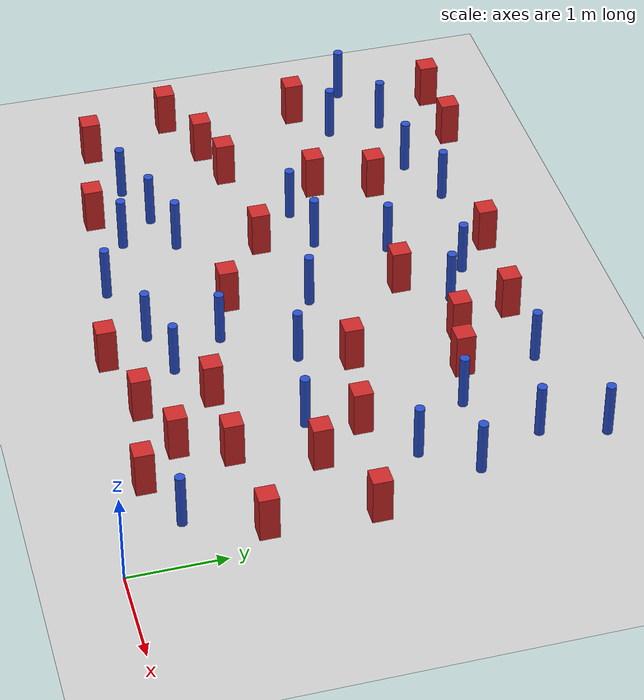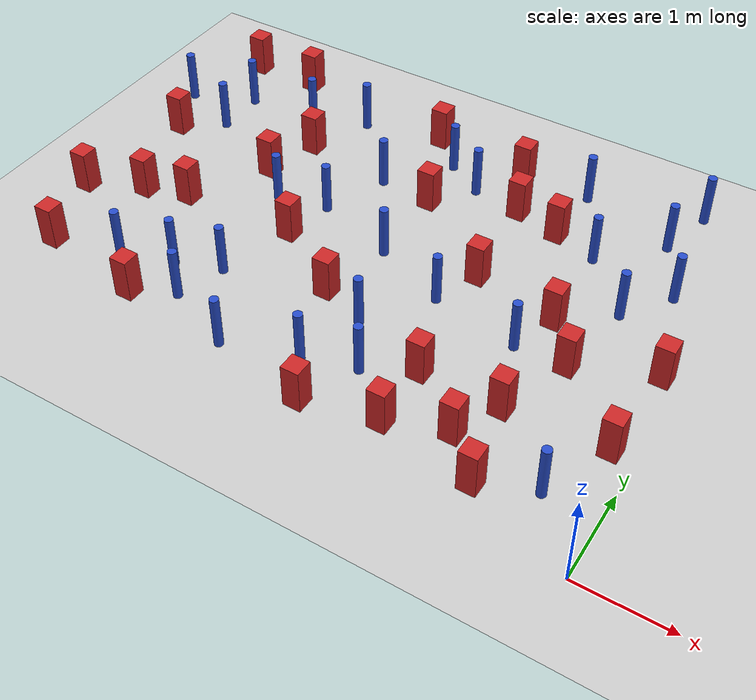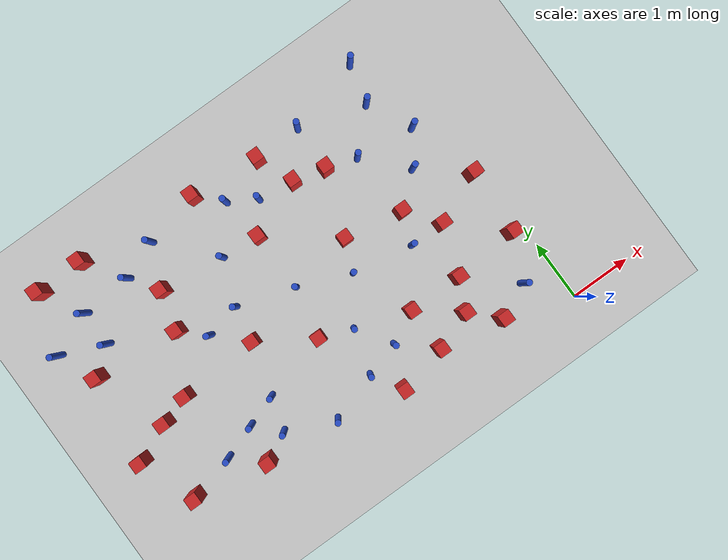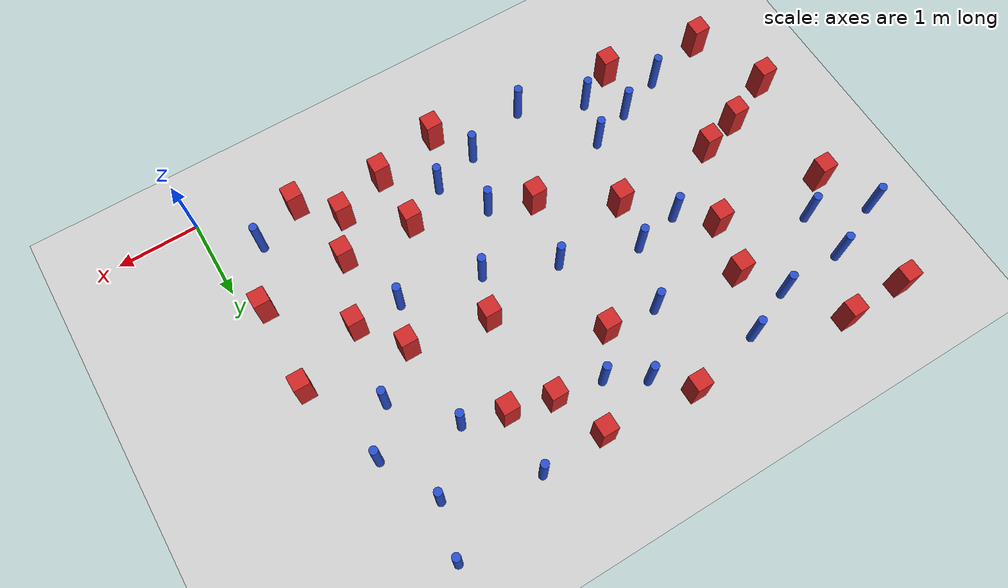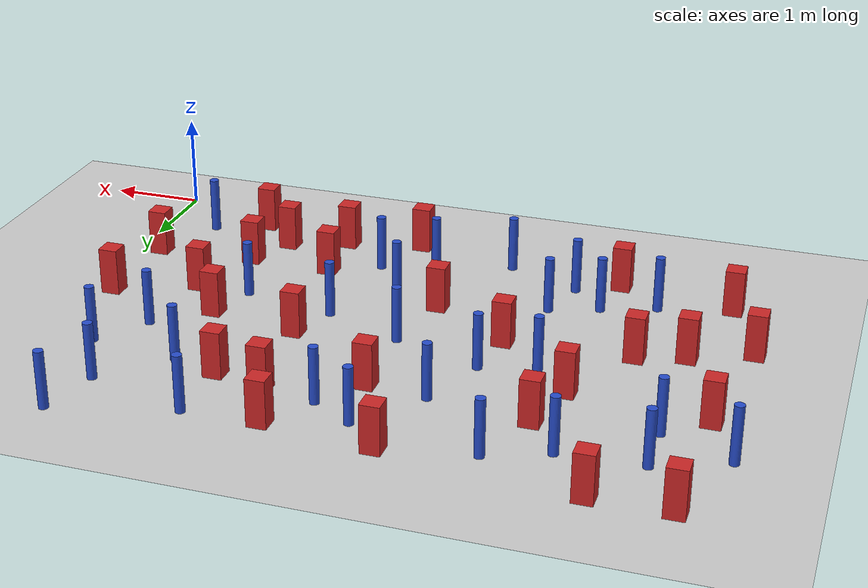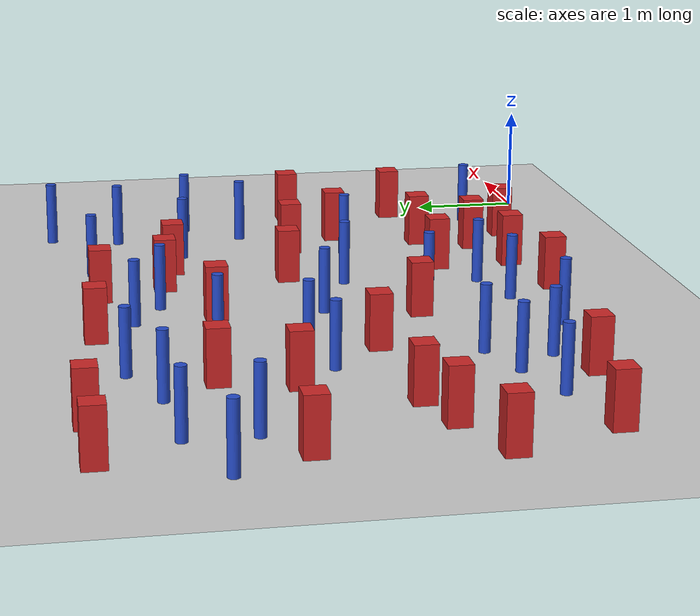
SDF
<sdf version="1.6">
 <world name="default">
  <model name="ground_plane">
   <static>1</static>
   <link name="link">
    <collision name="collision">
     <geometry><plane><normal>0 0 1</normal><size>100 100</size></plane></geometry>
     <surface><friction><ode><mu>100</mu><mu2>50</mu2></ode></friction></surface>
    </collision>
    <visual name="visual">
     <cast_shadows>0</cast_shadows>
     <geometry><plane><normal>0 0 1</normal><size>100 100</size></plane></geometry>
     <material>
      <ambient>1.0 1.0 1.0 1.0</ambient>
      <diffuse>0.8 0.8 0.8 1.0</diffuse>
      <specular>0.01 0.01 0.01 1.000000</specular>
     </material>
    </visual>
   </link>
  </model>
  <model name="square_post_obstacle11">
   <static>true</static>
   <pose>-5.11208348679 3.83488327447 -6.11067671241e-07 -5.50515727128e-06 -8.79689657224e-07 2.37013304536e-05</pose>
   <link name="link">
    <pose>0 0 0.25 0 -0 0</pose>
    <inertial>
     <mass>100</mass>
     <inertia>
      <ixx>0.166667</ixx>
      <ixy>0</ixy>
      <ixz>0</ixz>
      <iyy>0.166667</iyy>
      <iyz>0</iyz>
      <izz>0.166667</izz>
     </inertia>
    </inertial>
    <collision name="collision"><geometry><box><size>.2 .2 .5</size></box></geometry></collision>
    <visual name="visual">
     <geometry><box><size>.2 .2 .5</size></box></geometry>
     <material>
      <script><name>Gazebo/Red</name><uri>file://media/materials/scripts/gazebo.material</uri></script>
     </material>
    </visual>
   </link>
  </model>
  <model name="pole_obstacle16">
   <static>true</static>
   <pose>-3.53106733543 4.36434588367 -9.4761961606e-06 5.49618799729e-07 2.36310414006e-07 -1.55090534822e-07</pose>
   <link name="link">
    <pose>0 0 0.3 0 -0 0</pose>
    <inertial>
     <mass>1</mass>
     <inertia><ixx>0.145833</ixx><ixy>0</ixy><ixz>0</ixz><iyy>0.145833</iyy><iyz>0</iyz><izz>0.125</izz></inertia>
    </inertial>
    <collision name="collision">
     <geometry><cylinder><radius>0.05</radius><length>.6</length></cylinder></geometry>
    </collision>
    <visual name="visual">
     <geometry><cylinder><radius>0.05</radius><length>.6</length></cylinder></geometry>
     <material>
      <script><name>Gazebo/Blue</name><uri>file://media/materials/scripts/gazebo.material</uri></script>
     </material>
    </visual>
   </link>
  </model>
  <model name="square_post_obstacle13">
   <static>true</static>
   <pose>-1.98647705047 3.88158295997 -6.11067671241e-07 -5.50515727128e-06 -8.79689657224e-07 2.37013304536e-05</pose>
   <link name="link">
    <pose>0 0 0.25 0 -0 0</pose>
    <inertial>
     <mass>100</mass>
     <inertia>
      <ixx>0.166667</ixx>
      <ixy>0</ixy>
      <ixz>0</ixz>
      <iyy>0.166667</iyy>
      <iyz>0</iyz>
      <izz>0.166667</izz>
     </inertia>
    </inertial>
    <collision name="collision"><geometry><box><size>.2 .2 .5</size></box></geometry></collision>
    <visual name="visual">
     <geometry><box><size>.2 .2 .5</size></box></geometry>
     <material>
      <script><name>Gazebo/Red</name><uri>file://media/materials/scripts/gazebo.material</uri></script>
     </material>
    </visual>
   </link>
  </model>
  <model name="pole_obstacle23">
   <static>true</static>
   <pose>-0.52916791174 3.61355758785 -9.47619616065e-06 5.49618799737e-07 2.36310414065e-07 -1.55090534797e-07</pose>
   <link name="link">
    <pose>0 0 0.3 0 -0 0</pose>
    <inertial>
     <mass>1</mass>
     <inertia><ixx>0.145833</ixx><ixy>0</ixy><ixz>0</ixz><iyy>0.145833</iyy><iyz>0</iyz><izz>0.125</izz></inertia>
    </inertial>
    <collision name="collision">
     <geometry><cylinder><radius>0.05</radius><length>.6</length></cylinder></geometry>
    </collision>
    <visual name="visual">
     <geometry><cylinder><radius>0.05</radius><length>.6</length></cylinder></geometry>
     <material>
      <script><name>Gazebo/Blue</name><uri>file://media/materials/scripts/gazebo.material</uri></script>
     </material>
    </visual>
   </link>
  </model>
  <model name="pole_obstacle25">
   <static>true</static>
   <pose>-5.43658093436 4.29527930174 -9.47619616065e-06 5.49618799737e-07 2.36310414037e-07 -1.55090534814e-07</pose>
   <link name="link">
    <pose>0 0 0.3 0 -0 0</pose>
    <inertial>
     <mass>1</mass>
     <inertia><ixx>0.145833</ixx><ixy>0</ixy><ixz>0</ixz><iyy>0.145833</iyy><iyz>0</iyz><izz>0.125</izz></inertia>
    </inertial>
    <collision name="collision">
     <geometry><cylinder><radius>0.05</radius><length>.6</length></cylinder></geometry>
    </collision>
    <visual name="visual">
     <geometry><cylinder><radius>0.05</radius><length>.6</length></cylinder></geometry>
     <material>
      <script><name>Gazebo/Blue</name><uri>file://media/materials/scripts/gazebo.material</uri></script>
     </material>
    </visual>
   </link>
  </model>
  <model name="pole_obstacle29">
   <static>true</static>
   <pose>-2.71847354657 1.07524058883 -9.47619616065e-06 5.49618799737e-07 2.36310414072e-07 -1.55090534793e-07</pose>
   <link name="link">
    <pose>0 0 0.3 0 -0 0</pose>
    <inertial>
     <mass>1</mass>
     <inertia><ixx>0.145833</ixx><ixy>0</ixy><ixz>0</ixz><iyy>0.145833</iyy><iyz>0</iyz><izz>0.125</izz></inertia>
    </inertial>
    <collision name="collision">
     <geometry><cylinder><radius>0.05</radius><length>.6</length></cylinder></geometry>
    </collision>
    <visual name="visual">
     <geometry><cylinder><radius>0.05</radius><length>.6</length></cylinder></geometry>
     <material>
      <script><name>Gazebo/Blue</name><uri>file://media/materials/scripts/gazebo.material</uri></script>
     </material>
    </visual>
   </link>
  </model>
  <model name="square_post_obstacle22">
   <static>true</static>
   <pose>-6.25952303792 2.1627253685 -6.11067671241e-07 -5.50515727128e-06 -8.79689657224e-07 2.37013304536e-05</pose>
   <link name="link">
    <pose>0 0 0.25 0 -0 0</pose>
    <inertial>
     <mass>100</mass>
     <inertia>
      <ixx>0.166667</ixx>
      <ixy>0</ixy>
      <ixz>0</ixz>
      <iyy>0.166667</iyy>
      <iyz>0</iyz>
      <izz>0.166667</izz>
     </inertia>
    </inertial>
    <collision name="collision"><geometry><box><size>.2 .2 .5</size></box></geometry></collision>
    <visual name="visual">
     <geometry><box><size>.2 .2 .5</size></box></geometry>
     <material>
      <script><name>Gazebo/Red</name><uri>file://media/materials/scripts/gazebo.material</uri></script>
     </material>
    </visual>
   </link>
  </model>
  <model name="square_post_obstacle23">
   <static>true</static>
   <pose>-1.03589581127 2.14946720359 -6.11067671241e-07 -5.50515727128e-06 -8.79689657224e-07 2.37013304536e-05</pose>
   <link name="link">
    <pose>0 0 0.25 0 -0 0</pose>
    <inertial>
     <mass>100</mass>
     <inertia>
      <ixx>0.166667</ixx>
      <ixy>0</ixy>
      <ixz>0</ixz>
      <iyy>0.166667</iyy>
      <iyz>0</iyz>
      <izz>0.166667</izz>
     </inertia>
    </inertial>
    <collision name="collision"><geometry><box><size>.2 .2 .5</size></box></geometry></collision>
    <visual name="visual">
     <geometry><box><size>.2 .2 .5</size></box></geometry>
     <material>
      <script><name>Gazebo/Red</name><uri>file://media/materials/scripts/gazebo.material</uri></script>
     </material>
    </visual>
   </link>
  </model>
  <model name="square_post_obstacle24">
   <static>true</static>
   <pose>-1.31617062168 1.34023704746 -6.11067671241e-07 -5.50515727128e-06 -8.79689657224e-07 2.37013304536e-05</pose>
   <link name="link">
    <pose>0 0 0.25 0 -0 0</pose>
    <inertial>
     <mass>100</mass>
     <inertia>
      <ixx>0.166667</ixx>
      <ixy>0</ixy>
      <ixz>0</ixz>
      <iyy>0.166667</iyy>
      <iyz>0</iyz>
      <izz>0.166667</izz>
     </inertia>
    </inertial>
    <collision name="collision"><geometry><box><size>.2 .2 .5</size></box></geometry></collision>
    <visual name="visual">
     <geometry><box><size>.2 .2 .5</size></box></geometry>
     <material>
      <script><name>Gazebo/Red</name><uri>file://media/materials/scripts/gazebo.material</uri></script>
     </material>
    </visual>
   </link>
  </model>
  <model name="pole_obstacle42">
   <static>true</static>
   <pose>-4.08687508613 0.654166214375 -9.47619616065e-06 5.49618799737e-07 2.36310414061e-07 -1.550905348e-07</pose>
   <link name="link">
    <pose>0 0 0.3 0 -0 0</pose>
    <inertial>
     <mass>1</mass>
     <inertia><ixx>0.145833</ixx><ixy>0</ixy><ixz>0</ixz><iyy>0.145833</iyy><iyz>0</iyz><izz>0.125</izz></inertia>
    </inertial>
    <collision name="collision">
     <geometry><cylinder><radius>0.05</radius><length>.6</length></cylinder></geometry>
    </collision>
    <visual name="visual">
     <geometry><cylinder><radius>0.05</radius><length>.6</length></cylinder></geometry>
     <material>
      <script><name>Gazebo/Blue</name><uri>file://media/materials/scripts/gazebo.material</uri></script>
     </material>
    </visual>
   </link>
  </model>
  <model name="square_post_obstacle35">
   <static>true</static>
   <pose>-2.99519555615 0.434868840556 -6.11067671241e-07 -5.50515727128e-06 -8.79689657224e-07 2.37013304536e-05</pose>
   <link name="link">
    <pose>0 0 0.25 0 -0 0</pose>
    <inertial>
     <mass>100</mass>
     <inertia>
      <ixx>0.166667</ixx>
      <ixy>0</ixy>
      <ixz>0</ixz>
      <iyy>0.166667</iyy>
      <iyz>0</iyz>
      <izz>0.166667</izz>
     </inertia>
    </inertial>
    <collision name="collision"><geometry><box><size>.2 .2 .5</size></box></geometry></collision>
    <visual name="visual">
     <geometry><box><size>.2 .2 .5</size></box></geometry>
     <material>
      <script><name>Gazebo/Red</name><uri>file://media/materials/scripts/gazebo.material</uri></script>
     </material>
    </visual>
   </link>
  </model>
  <model name="square_post_obstacle36">
   <static>true</static>
   <pose>-2.3838666586 2.83522698682 -6.11067671241e-07 -5.50515727128e-06 -8.79689657224e-07 2.37013304536e-05</pose>
   <link name="link">
    <pose>0 0 0.25 0 -0 0</pose>
    <inertial>
     <mass>100</mass>
     <inertia>
      <ixx>0.166667</ixx>
      <ixy>0</ixy>
      <ixz>0</ixz>
      <iyy>0.166667</iyy>
      <iyz>0</iyz>
      <izz>0.166667</izz>
     </inertia>
    </inertial>
    <collision name="collision"><geometry><box><size>.2 .2 .5</size></box></geometry></collision>
    <visual name="visual">
     <geometry><box><size>.2 .2 .5</size></box></geometry>
     <material>
      <script><name>Gazebo/Red</name><uri>file://media/materials/scripts/gazebo.material</uri></script>
     </material>
    </visual>
   </link>
  </model>
  <model name="pole_obstacle49">
   <static>true</static>
   <pose>-4.35210475072 2.96771389852 -9.47619616065e-06 5.49618799738e-07 2.36310414051e-07 -1.55090534805e-07</pose>
   <link name="link">
    <pose>0 0 0.3 0 -0 0</pose>
    <inertial>
     <mass>1</mass>
     <inertia><ixx>0.145833</ixx><ixy>0</ixy><ixz>0</ixz><iyy>0.145833</iyy><iyz>0</iyz><izz>0.125</izz></inertia>
    </inertial>
    <collision name="collision">
     <geometry><cylinder><radius>0.05</radius><length>.6</length></cylinder></geometry>
    </collision>
    <visual name="visual">
     <geometry><cylinder><radius>0.05</radius><length>.6</length></cylinder></geometry>
     <material>
      <script><name>Gazebo/Blue</name><uri>file://media/materials/scripts/gazebo.material</uri></script>
     </material>
    </visual>
   </link>
  </model>
  <model name="square_post_obstacle51">
   <static>true</static>
   <pose>-3.59991834089 1.83453150276 -6.11067671241e-07 -5.50515727128e-06 -8.79689657224e-07 2.37013304536e-05</pose>
   <link name="link">
    <pose>0 0 0.25 0 -0 0</pose>
    <inertial>
     <mass>100</mass>
     <inertia>
      <ixx>0.166667</ixx>
      <ixy>0</ixy>
      <ixz>0</ixz>
      <iyy>0.166667</iyy>
      <iyz>0</iyz>
      <izz>0.166667</izz>
     </inertia>
    </inertial>
    <collision name="collision"><geometry><box><size>.2 .2 .5</size></box></geometry></collision>
    <visual name="visual">
     <geometry><box><size>.2 .2 .5</size></box></geometry>
     <material>
      <script><name>Gazebo/Red</name><uri>file://media/materials/scripts/gazebo.material</uri></script>
     </material>
    </visual>
   </link>
  </model>
  <model name="pole_obstacle72">
   <static>true</static>
   <pose>-5.21462465853 1.35950944324 -9.47619616065e-06 5.49618799738e-07 2.36310414071e-07 -1.55090534796e-07</pose>
   <link name="link">
    <pose>0 0 0.3 0 -0 0</pose>
    <inertial>
     <mass>1</mass>
     <inertia><ixx>0.145833</ixx><ixy>0</ixy><ixz>0</ixz><iyy>0.145833</iyy><iyz>0</iyz><izz>0.125</izz></inertia>
    </inertial>
    <collision name="collision">
     <geometry><cylinder><radius>0.05</radius><length>.6</length></cylinder></geometry>
    </collision>
    <visual name="visual">
     <geometry><cylinder><radius>0.05</radius><length>.6</length></cylinder></geometry>
     <material>
      <script><name>Gazebo/Blue</name><uri>file://media/materials/scripts/gazebo.material</uri></script>
     </material>
    </visual>
   </link>
  </model>
  <model name="square_post_obstacle63">
   <static>true</static>
   <pose>-6.68951539623 3.32651231091 -6.11067671241e-07 -5.50515727128e-06 -8.79689657224e-07 2.37013304536e-05</pose>
   <link name="link">
    <pose>0 0 0.25 0 -0 0</pose>
    <inertial>
     <mass>100</mass>
     <inertia>
      <ixx>0.166667</ixx>
      <ixy>0</ixy>
      <ixz>0</ixz>
      <iyy>0.166667</iyy>
      <iyz>0</iyz>
      <izz>0.166667</izz>
     </inertia>
    </inertial>
    <collision name="collision"><geometry><box><size>.2 .2 .5</size></box></geometry></collision>
    <visual name="visual">
     <geometry><box><size>.2 .2 .5</size></box></geometry>
     <material>
      <script><name>Gazebo/Red</name><uri>file://media/materials/scripts/gazebo.material</uri></script>
     </material>
    </visual>
   </link>
  </model>
  <model name="pole_obstacle79">
   <static>true</static>
   <pose>-0.725722338349 4.97566470522 -9.47619616065e-06 5.49618799737e-07 2.36310414065e-07 -1.55090534796e-07</pose>
   <link name="link">
    <pose>0 0 0.3 0 -0 0</pose>
    <inertial>
     <mass>1</mass>
     <inertia><ixx>0.145833</ixx><ixy>0</ixy><ixz>0</ixz><iyy>0.145833</iyy><iyz>0</iyz><izz>0.125</izz></inertia>
    </inertial>
    <collision name="collision">
     <geometry><cylinder><radius>0.05</radius><length>.6</length></cylinder></geometry>
    </collision>
    <visual name="visual">
     <geometry><cylinder><radius>0.05</radius><length>.6</length></cylinder></geometry>
     <material>
      <script><name>Gazebo/Blue</name><uri>file://media/materials/scripts/gazebo.material</uri></script>
     </material>
    </visual>
   </link>
  </model>
  <model name="square_post_obstacle69">
   <static>true</static>
   <pose>-5.32071702144 0.758949384527 -6.11067671241e-07 -5.50515727128e-06 -8.79689657224e-07 2.37013304536e-05</pose>
   <link name="link">
    <pose>0 0 0.25 0 -0 0</pose>
    <inertial>
     <mass>100</mass>
     <inertia>
      <ixx>0.166667</ixx>
      <ixy>0</ixy>
      <ixz>0</ixz>
      <iyy>0.166667</iyy>
      <iyz>0</iyz>
      <izz>0.166667</izz>
     </inertia>
    </inertial>
    <collision name="collision"><geometry><box><size>.2 .2 .5</size></box></geometry></collision>
    <visual name="visual">
     <geometry><box><size>.2 .2 .5</size></box></geometry>
     <material>
      <script><name>Gazebo/Red</name><uri>file://media/materials/scripts/gazebo.material</uri></script>
     </material>
    </visual>
   </link>
  </model>
  <model name="square_post_obstacle71">
   <static>true</static>
   <pose>-1.42557227259 2.65966341585 -6.11067671241e-07 -5.50515727128e-06 -8.79689657224e-07 2.37013304536e-05</pose>
   <link name="link">
    <pose>0 0 0.25 0 -0 0</pose>
    <inertial>
     <mass>100</mass>
     <inertia>
      <ixx>0.166667</ixx>
      <ixy>0</ixy>
      <ixz>0</ixz>
      <iyy>0.166667</iyy>
      <iyz>0</iyz>
      <izz>0.166667</izz>
     </inertia>
    </inertial>
    <collision name="collision"><geometry><box><size>.2 .2 .5</size></box></geometry></collision>
    <visual name="visual">
     <geometry><box><size>.2 .2 .5</size></box></geometry>
     <material>
      <script><name>Gazebo/Red</name><uri>file://media/materials/scripts/gazebo.material</uri></script>
     </material>
    </visual>
   </link>
  </model>
  <model name="square_post_obstacle80">
   <static>true</static>
   <pose>-5.28524639808 3.19770603199 -6.11067671241e-07 -5.50515727128e-06 -8.79689657224e-07 2.37013304536e-05</pose>
   <link name="link">
    <pose>0 0 0.25 0 -0 0</pose>
    <inertial>
     <mass>100</mass>
     <inertia>
      <ixx>0.166667</ixx>
      <ixy>0</ixy>
      <ixz>0</ixz>
      <iyy>0.166667</iyy>
      <iyz>0</iyz>
      <izz>0.166667</izz>
     </inertia>
    </inertial>
    <collision name="collision"><geometry><box><size>.2 .2 .5</size></box></geometry></collision>
    <visual name="visual">
     <geometry><box><size>.2 .2 .5</size></box></geometry>
     <material>
      <script><name>Gazebo/Red</name><uri>file://media/materials/scripts/gazebo.material</uri></script>
     </material>
    </visual>
   </link>
  </model>
  <model name="pole_obstacle91">
   <static>true</static>
   <pose>-5.77837412895 1.15841403296 -9.47619616065e-06 5.49618799738e-07 2.36310414071e-07 -1.55090534796e-07</pose>
   <link name="link">
    <pose>0 0 0.3 0 -0 0</pose>
    <inertial>
     <mass>1</mass>
     <inertia><ixx>0.145833</ixx><ixy>0</ixy><ixz>0</ixz><iyy>0.145833</iyy><iyz>0</iyz><izz>0.125</izz></inertia>
    </inertial>
    <collision name="collision">
     <geometry><cylinder><radius>0.05</radius><length>.6</length></cylinder></geometry>
    </collision>
    <visual name="visual">
     <geometry><cylinder><radius>0.05</radius><length>.6</length></cylinder></geometry>
     <material>
      <script><name>Gazebo/Blue</name><uri>file://media/materials/scripts/gazebo.material</uri></script>
     </material>
    </visual>
   </link>
  </model>
  <model name="square_post_obstacle87">
   <static>true</static>
   <pose>-6.63830023253 4.90638852341 -6.11067671241e-07 -5.50515727128e-06 -8.79689657224e-07 2.37013304536e-05</pose>
   <link name="link">
    <pose>0 0 0.25 0 -0 0</pose>
    <inertial>
     <mass>100</mass>
     <inertia>
      <ixx>0.166667</ixx>
      <ixy>0</ixy>
      <ixz>0</ixz>
      <iyy>0.166667</iyy>
      <iyz>0</iyz>
      <izz>0.166667</izz>
     </inertia>
    </inertial>
    <collision name="collision"><geometry><box><size>.2 .2 .5</size></box></geometry></collision>
    <visual name="visual">
     <geometry><box><size>.2 .2 .5</size></box></geometry>
     <material>
      <script><name>Gazebo/Red</name><uri>file://media/materials/scripts/gazebo.material</uri></script>
     </material>
    </visual>
   </link>
  </model>
  <model name="square_post_obstacle88">
   <static>true</static>
   <pose>-4.45054206383 2.38521306812 -6.11067671241e-07 -5.50515727128e-06 -8.79689657224e-07 2.37013304536e-05</pose>
   <link name="link">
    <pose>0 0 0.25 0 -0 0</pose>
    <inertial>
     <mass>100</mass>
     <inertia>
      <ixx>0.166667</ixx>
      <ixy>0</ixy>
      <ixz>0</ixz>
      <iyy>0.166667</iyy>
      <iyz>0</iyz>
      <izz>0.166667</izz>
     </inertia>
    </inertial>
    <collision name="collision"><geometry><box><size>.2 .2 .5</size></box></geometry></collision>
    <visual name="visual">
     <geometry><box><size>.2 .2 .5</size></box></geometry>
     <material>
      <script><name>Gazebo/Red</name><uri>file://media/materials/scripts/gazebo.material</uri></script>
     </material>
    </visual>
   </link>
  </model>
  <model name="square_post_obstacle89">
   <static>true</static>
   <pose>-5.85866660754 4.91889373134 -6.11067671241e-07 -5.50515727128e-06 -8.79689657224e-07 2.37013304536e-05</pose>
   <link name="link">
    <pose>0 0 0.25 0 -0 0</pose>
    <inertial>
     <mass>100</mass>
     <inertia>
      <ixx>0.166667</ixx>
      <ixy>0</ixy>
      <ixz>0</ixz>
      <iyy>0.166667</iyy>
      <iyz>0</iyz>
      <izz>0.166667</izz>
     </inertia>
    </inertial>
    <collision name="collision"><geometry><box><size>.2 .2 .5</size></box></geometry></collision>
    <visual name="visual">
     <geometry><box><size>.2 .2 .5</size></box></geometry>
     <material>
      <script><name>Gazebo/Red</name><uri>file://media/materials/scripts/gazebo.material</uri></script>
     </material>
    </visual>
   </link>
  </model>
  <model name="pole_obstacle100">
   <static>true</static>
   <pose>-1.4865483696 3.73078273116 -9.47619616065e-06 5.49618799737e-07 2.36310414062e-07 -1.55090534798e-07</pose>
   <link name="link">
    <pose>0 0 0.3 0 -0 0</pose>
    <inertial>
     <mass>1</mass>
     <inertia><ixx>0.145833</ixx><ixy>0</ixy><ixz>0</ixz><iyy>0.145833</iyy><iyz>0</iyz><izz>0.125</izz></inertia>
    </inertial>
    <collision name="collision">
     <geometry><cylinder><radius>0.05</radius><length>.6</length></cylinder></geometry>
    </collision>
    <visual name="visual">
     <geometry><cylinder><radius>0.05</radius><length>.6</length></cylinder></geometry>
     <material>
      <script><name>Gazebo/Blue</name><uri>file://media/materials/scripts/gazebo.material</uri></script>
     </material>
    </visual>
   </link>
  </model>
  <model name="square_post_obstacle94">
   <static>true</static>
   <pose>-0.245159152761 1.41915473068 -6.11067671241e-07 -5.50515727128e-06 -8.79689657224e-07 2.37013304536e-05</pose>
   <link name="link">
    <pose>0 0 0.25 0 -0 0</pose>
    <inertial>
     <mass>100</mass>
     <inertia>
      <ixx>0.166667</ixx>
      <ixy>0</ixy>
      <ixz>0</ixz>
      <iyy>0.166667</iyy>
      <iyz>0</iyz>
      <izz>0.166667</izz>
     </inertia>
    </inertial>
    <collision name="collision"><geometry><box><size>.2 .2 .5</size></box></geometry></collision>
    <visual name="visual">
     <geometry><box><size>.2 .2 .5</size></box></geometry>
     <material>
      <script><name>Gazebo/Red</name><uri>file://media/materials/scripts/gazebo.material</uri></script>
     </material>
    </visual>
   </link>
  </model>
  <model name="square_post_obstacle100">
   <static>true</static>
   <pose>-6.88626746903 1.8910097548 -6.11067671241e-07 -5.50515727128e-06 -8.79689657224e-07 2.37013304536e-05</pose>
   <link name="link">
    <pose>0 0 0.25 0 -0 0</pose>
    <inertial>
     <mass>100</mass>
     <inertia>
      <ixx>0.166667</ixx>
      <ixy>0</ixy>
      <ixz>0</ixz>
      <iyy>0.166667</iyy>
      <iyz>0</iyz>
      <izz>0.166667</izz>
     </inertia>
    </inertial>
    <collision name="collision"><geometry><box><size>.2 .2 .5</size></box></geometry></collision>
    <visual name="visual">
     <geometry><box><size>.2 .2 .5</size></box></geometry>
     <material>
      <script><name>Gazebo/Red</name><uri>file://media/materials/scripts/gazebo.material</uri></script>
     </material>
    </visual>
   </link>
  </model>
  <model name="square_post_obstacle101">
   <static>true</static>
   <pose>-2.20128215417 1.34245575795 -6.11067671241e-07 -5.50515727128e-06 -8.79689657224e-07 2.37013304536e-05</pose>
   <link name="link">
    <pose>0 0 0.25 0 -0 0</pose>
    <inertial>
     <mass>100</mass>
     <inertia>
      <ixx>0.166667</ixx>
      <ixy>0</ixy>
      <ixz>0</ixz>
      <iyy>0.166667</iyy>
      <iyz>0</iyz>
      <izz>0.166667</izz>
     </inertia>
    </inertial>
    <collision name="collision"><geometry><box><size>.2 .2 .5</size></box></geometry></collision>
    <visual name="visual">
     <geometry><box><size>.2 .2 .5</size></box></geometry>
     <material>
      <script><name>Gazebo/Red</name><uri>file://media/materials/scripts/gazebo.material</uri></script>
     </material>
    </visual>
   </link>
  </model>
  <model name="pole_obstacle120">
   <static>true</static>
   <pose>-4.70361310749 1.53357622624 -9.47619616065e-06 5.49618799738e-07 2.36310414071e-07 -1.55090534796e-07</pose>
   <link name="link">
    <pose>0 0 0.3 0 -0 0</pose>
    <inertial>
     <mass>1</mass>
     <inertia><ixx>0.145833</ixx><ixy>0</ixy><ixz>0</ixz><iyy>0.145833</iyy><iyz>0</iyz><izz>0.125</izz></inertia>
    </inertial>
    <collision name="collision">
     <geometry><cylinder><radius>0.05</radius><length>.6</length></cylinder></geometry>
    </collision>
    <visual name="visual">
     <geometry><cylinder><radius>0.05</radius><length>.6</length></cylinder></geometry>
     <material>
      <script><name>Gazebo/Blue</name><uri>file://media/materials/scripts/gazebo.material</uri></script>
     </material>
    </visual>
   </link>
  </model>
  <model name="square_post_obstacle121">
   <static>true</static>
   <pose>-1.55499849152 0.839731552874 -6.11067671241e-07 -5.50515727128e-06 -8.79689657224e-07 2.37013304536e-05</pose>
   <link name="link">
    <pose>0 0 0.25 0 -0 0</pose>
    <inertial>
     <mass>100</mass>
     <inertia>
      <ixx>0.166667</ixx>
      <ixy>0</ixy>
      <ixz>0</ixz>
      <iyy>0.166667</iyy>
      <iyz>0</iyz>
      <izz>0.166667</izz>
     </inertia>
    </inertial>
    <collision name="collision"><geometry><box><size>.2 .2 .5</size></box></geometry></collision>
    <visual name="visual">
     <geometry><box><size>.2 .2 .5</size></box></geometry>
     <material>
      <script><name>Gazebo/Red</name><uri>file://media/materials/scripts/gazebo.material</uri></script>
     </material>
    </visual>
   </link>
  </model>
  <model name="pole_obstacle126">
   <static>true</static>
   <pose>-1.96748945653 4.64522731336 -9.47619616065e-06 5.49618799737e-07 2.36310414064e-07 -1.55090534797e-07</pose>
   <link name="link">
    <pose>0 0 0.3 0 -0 0</pose>
    <inertial>
     <mass>1</mass>
     <inertia><ixx>0.145833</ixx><ixy>0</ixy><ixz>0</ixz><iyy>0.145833</iyy><iyz>0</iyz><izz>0.125</izz></inertia>
    </inertial>
    <collision name="collision">
     <geometry><cylinder><radius>0.05</radius><length>.6</length></cylinder></geometry>
    </collision>
    <visual name="visual">
     <geometry><cylinder><radius>0.05</radius><length>.6</length></cylinder></geometry>
     <material>
      <script><name>Gazebo/Blue</name><uri>file://media/materials/scripts/gazebo.material</uri></script>
     </material>
    </visual>
   </link>
  </model>
  <model name="pole_obstacle128">
   <static>true</static>
   <pose>-4.92275060913 2.84345998046 -9.47619616065e-06 5.49618799738e-07 2.36310414051e-07 -1.55090534805e-07</pose>
   <link name="link">
    <pose>0 0 0.3 0 -0 0</pose>
    <inertial>
     <mass>1</mass>
     <inertia><ixx>0.145833</ixx><ixy>0</ixy><ixz>0</ixz><iyy>0.145833</iyy><iyz>0</iyz><izz>0.125</izz></inertia>
    </inertial>
    <collision name="collision">
     <geometry><cylinder><radius>0.05</radius><length>.6</length></cylinder></geometry>
    </collision>
    <visual name="visual">
     <geometry><cylinder><radius>0.05</radius><length>.6</length></cylinder></geometry>
     <material>
      <script><name>Gazebo/Blue</name><uri>file://media/materials/scripts/gazebo.material</uri></script>
     </material>
    </visual>
   </link>
  </model>
  <model name="pole_obstacle130">
   <static>true</static>
   <pose>-3.09278826988 4.10162577858 -9.47619616065e-06 5.49618799738e-07 2.3631041406e-07 -1.55090534801e-07</pose>
   <link name="link">
    <pose>0 0 0.3 0 -0 0</pose>
    <inertial>
     <mass>1</mass>
     <inertia><ixx>0.145833</ixx><ixy>0</ixy><ixz>0</ixz><iyy>0.145833</iyy><iyz>0</iyz><izz>0.125</izz></inertia>
    </inertial>
    <collision name="collision">
     <geometry><cylinder><radius>0.05</radius><length>.6</length></cylinder></geometry>
    </collision>
    <visual name="visual">
     <geometry><cylinder><radius>0.05</radius><length>.6</length></cylinder></geometry>
     <material>
      <script><name>Gazebo/Blue</name><uri>file://media/materials/scripts/gazebo.material</uri></script>
     </material>
    </visual>
   </link>
  </model>
  <model name="square_post_obstacle139">
   <static>true</static>
   <pose>-5.76719781029 2.31054857785 -6.11067671241e-07 -5.50515727128e-06 -8.79689657224e-07 2.37013304536e-05</pose>
   <link name="link">
    <pose>0 0 0.25 0 -0 0</pose>
    <inertial>
     <mass>100</mass>
     <inertia>
      <ixx>0.166667</ixx>
      <ixy>0</ixy>
      <ixz>0</ixz>
      <iyy>0.166667</iyy>
      <iyz>0</iyz>
      <izz>0.166667</izz>
     </inertia>
    </inertial>
    <collision name="collision"><geometry><box><size>.2 .2 .5</size></box></geometry></collision>
    <visual name="visual">
     <geometry><box><size>.2 .2 .5</size></box></geometry>
     <material>
      <script><name>Gazebo/Red</name><uri>file://media/materials/scripts/gazebo.material</uri></script>
     </material>
    </visual>
   </link>
  </model>
  <model name="pole_obstacle145">
   <static>true</static>
   <pose>-1.60077121057 2.14269726401 -9.47619616065e-06 5.49618799737e-07 2.36310414062e-07 -1.55090534798e-07</pose>
   <link name="link">
    <pose>0 0 0.3 0 -0 0</pose>
    <inertial>
     <mass>1</mass>
     <inertia><ixx>0.145833</ixx><ixy>0</ixy><ixz>0</ixz><iyy>0.145833</iyy><iyz>0</iyz><izz>0.125</izz></inertia>
    </inertial>
    <collision name="collision">
     <geometry><cylinder><radius>0.05</radius><length>.6</length></cylinder></geometry>
    </collision>
    <visual name="visual">
     <geometry><cylinder><radius>0.05</radius><length>.6</length></cylinder></geometry>
     <material>
      <script><name>Gazebo/Blue</name><uri>file://media/materials/scripts/gazebo.material</uri></script>
     </material>
    </visual>
   </link>
  </model>
  <model name="pole_obstacle147">
   <static>true</static>
   <pose>-0.898645486962 3.0918863109 -9.47619616065e-06 5.49618799737e-07 2.36310414066e-07 -1.55090534797e-07</pose>
   <link name="link">
    <pose>0 0 0.3 0 -0 0</pose>
    <inertial>
     <mass>1</mass>
     <inertia><ixx>0.145833</ixx><ixy>0</ixy><ixz>0</ixz><iyy>0.145833</iyy><iyz>0</iyz><izz>0.125</izz></inertia>
    </inertial>
    <collision name="collision">
     <geometry><cylinder><radius>0.05</radius><length>.6</length></cylinder></geometry>
    </collision>
    <visual name="visual">
     <geometry><cylinder><radius>0.05</radius><length>.6</length></cylinder></geometry>
     <material>
      <script><name>Gazebo/Blue</name><uri>file://media/materials/scripts/gazebo.material</uri></script>
     </material>
    </visual>
   </link>
  </model>
  <model name="square_post_obstacle145">
   <static>true</static>
   <pose>-0.197419321271 2.50045660041 -6.11067671241e-07 -5.50515727128e-06 -8.79689657224e-07 2.37013304536e-05</pose>
   <link name="link">
    <pose>0 0 0.25 0 -0 0</pose>
    <inertial>
     <mass>100</mass>
     <inertia>
      <ixx>0.166667</ixx>
      <ixy>0</ixy>
      <ixz>0</ixz>
      <iyy>0.166667</iyy>
      <iyz>0</iyz>
      <izz>0.166667</izz>
     </inertia>
    </inertial>
    <collision name="collision"><geometry><box><size>.2 .2 .5</size></box></geometry></collision>
    <visual name="visual">
     <geometry><box><size>.2 .2 .5</size></box></geometry>
     <material>
      <script><name>Gazebo/Red</name><uri>file://media/materials/scripts/gazebo.material</uri></script>
     </material>
    </visual>
   </link>
  </model>
  <model name="pole_obstacle160">
   <static>true</static>
   <pose>-4.82357416362 4.54092960597 -9.47619616065e-06 5.49618799737e-07 2.36310414037e-07 -1.55090534814e-07</pose>
   <link name="link">
    <pose>0 0 0.3 0 -0 0</pose>
    <inertial>
     <mass>1</mass>
     <inertia><ixx>0.145833</ixx><ixy>0</ixy><ixz>0</ixz><iyy>0.145833</iyy><iyz>0</iyz><izz>0.125</izz></inertia>
    </inertial>
    <collision name="collision">
     <geometry><cylinder><radius>0.05</radius><length>.6</length></cylinder></geometry>
    </collision>
    <visual name="visual">
     <geometry><cylinder><radius>0.05</radius><length>.6</length></cylinder></geometry>
     <material>
      <script><name>Gazebo/Blue</name><uri>file://media/materials/scripts/gazebo.material</uri></script>
     </material>
    </visual>
   </link>
  </model>
  <model name="pole_obstacle162">
   <static>true</static>
   <pose>-3.29093056266 0.91002823535 -9.47619616065e-06 5.49618799738e-07 2.36310414075e-07 -1.55090534793e-07</pose>
   <link name="link">
    <pose>0 0 0.3 0 -0 0</pose>
    <inertial>
     <mass>1</mass>
     <inertia><ixx>0.145833</ixx><ixy>0</ixy><ixz>0</ixz><iyy>0.145833</iyy><iyz>0</iyz><izz>0.125</izz></inertia>
    </inertial>
    <collision name="collision">
     <geometry><cylinder><radius>0.05</radius><length>.6</length></cylinder></geometry>
    </collision>
    <visual name="visual">
     <geometry><cylinder><radius>0.05</radius><length>.6</length></cylinder></geometry>
     <material>
      <script><name>Gazebo/Blue</name><uri>file://media/materials/scripts/gazebo.material</uri></script>
     </material>
    </visual>
   </link>
  </model>
  <model name="square_post_obstacle155">
   <static>true</static>
   <pose>-1.13790106968 0.42690370058 -6.11067671241e-07 -5.50515727128e-06 -8.79689657224e-07 2.37013304536e-05</pose>
   <link name="link">
    <pose>0 0 0.25 0 -0 0</pose>
    <inertial>
     <mass>100</mass>
     <inertia>
      <ixx>0.166667</ixx>
      <ixy>0</ixy>
      <ixz>0</ixz>
      <iyy>0.166667</iyy>
      <iyz>0</iyz>
      <izz>0.166667</izz>
     </inertia>
    </inertial>
    <collision name="collision"><geometry><box><size>.2 .2 .5</size></box></geometry></collision>
    <visual name="visual">
     <geometry><box><size>.2 .2 .5</size></box></geometry>
     <material>
      <script><name>Gazebo/Red</name><uri>file://media/materials/scripts/gazebo.material</uri></script>
     </material>
    </visual>
   </link>
  </model>
  <model name="pole_obstacle175">
   <static>true</static>
   <pose>-6.27714743553 4.24352719291 -9.47619616065e-06 5.49618799737e-07 2.36310414037e-07 -1.55090534814e-07</pose>
   <link name="link">
    <pose>0 0 0.3 0 -0 0</pose>
    <inertial>
     <mass>1</mass>
     <inertia><ixx>0.145833</ixx><ixy>0</ixy><ixz>0</ixz><iyy>0.145833</iyy><iyz>0</iyz><izz>0.125</izz></inertia>
    </inertial>
    <collision name="collision">
     <geometry><cylinder><radius>0.05</radius><length>.6</length></cylinder></geometry>
    </collision>
    <visual name="visual">
     <geometry><cylinder><radius>0.05</radius><length>.6</length></cylinder></geometry>
     <material>
      <script><name>Gazebo/Blue</name><uri>file://media/materials/scripts/gazebo.material</uri></script>
     </material>
    </visual>
   </link>
  </model>
  <model name="pole_obstacle176">
   <static>true</static>
   <pose>-3.07735283762 1.63154468866 -9.47619616065e-06 5.49618799737e-07 2.3631041403e-07 -1.5509053482e-07</pose>
   <link name="link">
    <pose>0 0 0.3 0 -0 0</pose>
    <inertial>
     <mass>1</mass>
     <inertia><ixx>0.145833</ixx><ixy>0</ixy><ixz>0</ixz><iyy>0.145833</iyy><iyz>0</iyz><izz>0.125</izz></inertia>
    </inertial>
    <collision name="collision">
     <geometry><cylinder><radius>0.05</radius><length>.6</length></cylinder></geometry>
    </collision>
    <visual name="visual">
     <geometry><cylinder><radius>0.05</radius><length>.6</length></cylinder></geometry>
     <material>
      <script><name>Gazebo/Blue</name><uri>file://media/materials/scripts/gazebo.material</uri></script>
     </material>
    </visual>
   </link>
  </model>
  <model name="square_post_obstacle177">
   <static>true</static>
   <pose>-6.53601861649 0.969472370487 -6.11067671241e-07 -5.50515727128e-06 -8.79689657224e-07 2.37013304536e-05</pose>
   <link name="link">
    <pose>0 0 0.25 0 -0 0</pose>
    <inertial>
     <mass>100</mass>
     <inertia>
      <ixx>0.166667</ixx>
      <ixy>0</ixy>
      <ixz>0</ixz>
      <iyy>0.166667</iyy>
      <iyz>0</iyz>
      <izz>0.166667</izz>
     </inertia>
    </inertial>
    <collision name="collision"><geometry><box><size>.2 .2 .5</size></box></geometry></collision>
    <visual name="visual">
     <geometry><box><size>.2 .2 .5</size></box></geometry>
     <material>
      <script><name>Gazebo/Red</name><uri>file://media/materials/scripts/gazebo.material</uri></script>
     </material>
    </visual>
   </link>
  </model>
  <model name="square_post_obstacle180">
   <static>true</static>
   <pose>-2.75633484547 4.61651029713 -6.11067671241e-07 -5.50515727128e-06 -8.79689657224e-07 2.37013304536e-05</pose>
   <link name="link">
    <pose>0 0 0.25 0 -0 0</pose>
    <inertial>
     <mass>100</mass>
     <inertia>
      <ixx>0.166667</ixx>
      <ixy>0</ixy>
      <ixz>0</ixz>
      <iyy>0.166667</iyy>
      <iyz>0</iyz>
      <izz>0.166667</izz>
     </inertia>
    </inertial>
    <collision name="collision"><geometry><box><size>.2 .2 .5</size></box></geometry></collision>
    <visual name="visual">
     <geometry><box><size>.2 .2 .5</size></box></geometry>
     <material>
      <script><name>Gazebo/Red</name><uri>file://media/materials/scripts/gazebo.material</uri></script>
     </material>
    </visual>
   </link>
  </model>
  <model name="square_post_obstacle183">
   <static>true</static>
   <pose>-2.51131298008 4.00749124572 -6.11067671241e-07 -5.50515727128e-06 -8.79689657224e-07 2.37013304536e-05</pose>
   <link name="link">
    <pose>0 0 0.25 0 -0 0</pose>
    <inertial>
     <mass>100</mass>
     <inertia>
      <ixx>0.166667</ixx>
      <ixy>0</ixy>
      <ixz>0</ixz>
      <iyy>0.166667</iyy>
      <iyz>0</iyz>
      <izz>0.166667</izz>
     </inertia>
    </inertial>
    <collision name="collision"><geometry><box><size>.2 .2 .5</size></box></geometry></collision>
    <visual name="visual">
     <geometry><box><size>.2 .2 .5</size></box></geometry>
     <material>
      <script><name>Gazebo/Red</name><uri>file://media/materials/scripts/gazebo.material</uri></script>
     </material>
    </visual>
   </link>
  </model>
  <model name="square_post_obstacle186">
   <static>true</static>
   <pose>-3.437526503 3.64061944127 -6.11067671241e-07 -5.50515727128e-06 -8.79689657224e-07 2.37013304536e-05</pose>
   <link name="link">
    <pose>0 0 0.25 0 -0 0</pose>
    <inertial>
     <mass>100</mass>
     <inertia>
      <ixx>0.166667</ixx>
      <ixy>0</ixy>
      <ixz>0</ixz>
      <iyy>0.166667</iyy>
      <iyz>0</iyz>
      <izz>0.166667</izz>
     </inertia>
    </inertial>
    <collision name="collision"><geometry><box><size>.2 .2 .5</size></box></geometry></collision>
    <visual name="visual">
     <geometry><box><size>.2 .2 .5</size></box></geometry>
     <material>
      <script><name>Gazebo/Red</name><uri>file://media/materials/scripts/gazebo.material</uri></script>
     </material>
    </visual>
   </link>
  </model>
  <model name="pole_obstacle186">
   <static>true</static>
   <pose>-0.567260836029 0.67035189025 -9.47619616065e-06 5.49618799737e-07 2.36310414058e-07 -1.55090534802e-07</pose>
   <link name="link">
    <pose>0 0 0.3 0 -0 0</pose>
    <inertial>
     <mass>1</mass>
     <inertia><ixx>0.145833</ixx><ixy>0</ixy><ixz>0</ixz><iyy>0.145833</iyy><iyz>0</iyz><izz>0.125</izz></inertia>
    </inertial>
    <collision name="collision">
     <geometry><cylinder><radius>0.05</radius><length>.6</length></cylinder></geometry>
    </collision>
    <visual name="visual">
     <geometry><cylinder><radius>0.05</radius><length>.6</length></cylinder></geometry>
     <material>
      <script><name>Gazebo/Blue</name><uri>file://media/materials/scripts/gazebo.material</uri></script>
     </material>
    </visual>
   </link>
  </model>
  <model name="pole_obstacle190">
   <static>true</static>
   <pose>-6.27372064496 3.65877019628 -9.47619616065e-06 5.49618799738e-07 2.36310414051e-07 -1.55090534805e-07</pose>
   <link name="link">
    <pose>0 0 0.3 0 -0 0</pose>
    <inertial>
     <mass>1</mass>
     <inertia><ixx>0.145833</ixx><ixy>0</ixy><ixz>0</ixz><iyy>0.145833</iyy><iyz>0</iyz><izz>0.125</izz></inertia>
    </inertial>
    <collision name="collision">
     <geometry><cylinder><radius>0.05</radius><length>.6</length></cylinder></geometry>
    </collision>
    <visual name="visual">
     <geometry><cylinder><radius>0.05</radius><length>.6</length></cylinder></geometry>
     <material>
      <script><name>Gazebo/Blue</name><uri>file://media/materials/scripts/gazebo.material</uri></script>
     </material>
    </visual>
   </link>
  </model>
  <model name="square_post_obstacle198">
   <static>true</static>
   <pose>-3.89280994994 4.72826489852 -6.11067671241e-07 -5.50515727128e-06 -8.79689657224e-07 2.37013304536e-05</pose>
   <link name="link">
    <pose>0 0 0.25 0 -0 0</pose>
    <inertial>
     <mass>100</mass>
     <inertia>
      <ixx>0.166667</ixx>
      <ixy>0</ixy>
      <ixz>0</ixz>
      <iyy>0.166667</iyy>
      <iyz>0</iyz>
      <izz>0.166667</izz>
     </inertia>
    </inertial>
    <collision name="collision"><geometry><box><size>.2 .2 .5</size></box></geometry></collision>
    <visual name="visual">
     <geometry><box><size>.2 .2 .5</size></box></geometry>
     <material>
      <script><name>Gazebo/Red</name><uri>file://media/materials/scripts/gazebo.material</uri></script>
     </material>
    </visual>
   </link>
  </model>
  <model name="square_post_obstacle204">
   <static>true</static>
   <pose>-2.18382575798 0.61441836457 -6.11067671241e-07 -5.50515727128e-06 -8.79689657224e-07 2.37013304536e-05</pose>
   <link name="link">
    <pose>0 0 0.25 0 -0 0</pose>
    <inertial>
     <mass>100</mass>
     <inertia>
      <ixx>0.166667</ixx>
      <ixy>0</ixy>
      <ixz>0</ixz>
      <iyy>0.166667</iyy>
      <iyz>0</iyz>
      <izz>0.166667</izz>
     </inertia>
    </inertial>
    <collision name="collision"><geometry><box><size>.2 .2 .5</size></box></geometry></collision>
    <visual name="visual">
     <geometry><box><size>.2 .2 .5</size></box></geometry>
     <material>
      <script><name>Gazebo/Red</name><uri>file://media/materials/scripts/gazebo.material</uri></script>
     </material>
    </visual>
   </link>
  </model>
  <model name="pole_obstacle201">
   <static>true</static>
   <pose>-2.58583075637 2.32647969467 -9.47619616065e-06 5.49618799737e-07 2.36310414051e-07 -1.55090534807e-07</pose>
   <link name="link">
    <pose>0 0 0.3 0 -0 0</pose>
    <inertial>
     <mass>1</mass>
     <inertia><ixx>0.145833</ixx><ixy>0</ixy><ixz>0</ixz><iyy>0.145833</iyy><iyz>0</iyz><izz>0.125</izz></inertia>
    </inertial>
    <collision name="collision">
     <geometry><cylinder><radius>0.05</radius><length>.6</length></cylinder></geometry>
    </collision>
    <visual name="visual">
     <geometry><cylinder><radius>0.05</radius><length>.6</length></cylinder></geometry>
     <material>
      <script><name>Gazebo/Blue</name><uri>file://media/materials/scripts/gazebo.material</uri></script>
     </material>
    </visual>
   </link>
  </model>
  <model name="pole_obstacle206">
   <static>true</static>
   <pose>-0.888043595438 4.32530494282 -9.47619616065e-06 5.49618799737e-07 2.36310414065e-07 -1.55090534796e-07</pose>
   <link name="link">
    <pose>0 0 0.3 0 -0 0</pose>
    <inertial>
     <mass>1</mass>
     <inertia><ixx>0.145833</ixx><ixy>0</ixy><ixz>0</ixz><iyy>0.145833</iyy><iyz>0</iyz><izz>0.125</izz></inertia>
    </inertial>
    <collision name="collision">
     <geometry><cylinder><radius>0.05</radius><length>.6</length></cylinder></geometry>
    </collision>
    <visual name="visual">
     <geometry><cylinder><radius>0.05</radius><length>.6</length></cylinder></geometry>
     <material>
      <script><name>Gazebo/Blue</name><uri>file://media/materials/scripts/gazebo.material</uri></script>
     </material>
    </visual>
   </link>
  </model>
  <model name="pole_obstacle212">
   <static>true</static>
   <pose>-3.42469999061 2.66624002078 -9.47619616065e-06 5.49618799737e-07 2.36310414067e-07 -1.55090534797e-07</pose>
   <link name="link">
    <pose>0 0 0.3 0 -0 0</pose>
    <inertial>
     <mass>1</mass>
     <inertia><ixx>0.145833</ixx><ixy>0</ixy><ixz>0</ixz><iyy>0.145833</iyy><iyz>0</iyz><izz>0.125</izz></inertia>
    </inertial>
    <collision name="collision">
     <geometry><cylinder><radius>0.05</radius><length>.6</length></cylinder></geometry>
    </collision>
    <visual name="visual">
     <geometry><cylinder><radius>0.05</radius><length>.6</length></cylinder></geometry>
     <material>
      <script><name>Gazebo/Blue</name><uri>file://media/materials/scripts/gazebo.material</uri></script>
     </material>
    </visual>
   </link>
  </model>
  <model name="pole_obstacle215">
   <static>true</static>
   <pose>-4.86853999061 0.98563502078 -9.47619616065e-06 5.49618799737e-07 2.36310414074e-07 -1.55090534794e-07</pose>
   <link name="link">
    <pose>0 0 0.3 0 -0 0</pose>
    <inertial>
     <mass>1</mass>
     <inertia><ixx>0.145833</ixx><ixy>0</ixy><ixz>0</ixz><iyy>0.145833</iyy><iyz>0</iyz><izz>0.125</izz></inertia>
    </inertial>
    <collision name="collision">
     <geometry><cylinder><radius>0.05</radius><length>.6</length></cylinder></geometry>
    </collision>
    <visual name="visual">
     <geometry><cylinder><radius>0.05</radius><length>.6</length></cylinder></geometry>
     <material>
      <script><name>Gazebo/Blue</name><uri>file://media/materials/scripts/gazebo.material</uri></script>
     </material>
    </visual>
   </link>
  </model>
  <model name="pole_obstacle220">
   <static>true</static>
   <pose>-6.98619999061 3.95083002078 -9.47619616065e-06 5.49618799737e-07 2.36310414054e-07 -1.55090534804e-07</pose>
   <link name="link">
    <pose>0 0 0.3 0 -0 0</pose>
    <inertial>
     <mass>1</mass>
     <inertia><ixx>0.145833</ixx><ixy>0</ixy><ixz>0</ixz><iyy>0.145833</iyy><iyz>0</iyz><izz>0.125</izz></inertia>
    </inertial>
    <collision name="collision">
     <geometry><cylinder><radius>0.05</radius><length>.6</length></cylinder></geometry>
    </collision>
    <visual name="visual">
     <geometry><cylinder><radius>0.05</radius><length>.6</length></cylinder></geometry>
     <material>
      <script><name>Gazebo/Blue</name><uri>file://media/materials/scripts/gazebo.material</uri></script>
     </material>
    </visual>
   </link>
  </model>
  <model name="pole_obstacle227">
   <static>true</static>
   <pose>-4.06916999061 3.70025002078 -9.47619616065e-06 5.49618799737e-07 2.3631041406e-07 -1.550905348e-07</pose>
   <link name="link">
    <pose>0 0 0.3 0 -0 0</pose>
    <inertial>
     <mass>1</mass>
     <inertia><ixx>0.145833</ixx><ixy>0</ixy><ixz>0</ixz><iyy>0.145833</iyy><iyz>0</iyz><izz>0.125</izz></inertia>
    </inertial>
    <collision name="collision">
     <geometry><cylinder><radius>0.05</radius><length>.6</length></cylinder></geometry>
    </collision>
    <visual name="visual">
     <geometry><cylinder><radius>0.05</radius><length>.6</length></cylinder></geometry>
     <material>
      <script><name>Gazebo/Blue</name><uri>file://media/materials/scripts/gazebo.material</uri></script>
     </material>
    </visual>
   </link>
  </model>
 </world>
</sdf>
